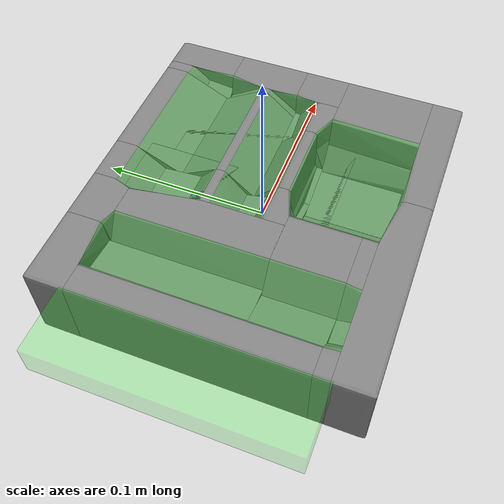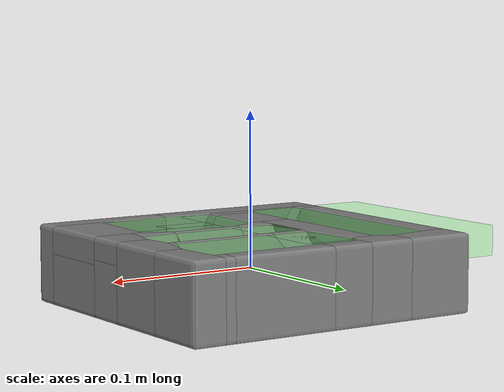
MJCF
<mujoco model="cosmetics_inlay_a">
  <default>
    <default class="visual">
      <geom group="1" type="mesh" contype="0" conaffinity="0" />
    </default>
    <default class="collision">
      <geom group="0" type="mesh" />
    </default>
  </default>
  <asset>
    <mesh file="cosmetics_inlay_a.obj" name="cosmetics_inlay_a" />
    <mesh file="cosmetics_inlay_a_collision_0.obj" name="cosmetics_inlay_a_collision_0" />
    <mesh file="cosmetics_inlay_a_collision_1.obj" name="cosmetics_inlay_a_collision_1" />
    <mesh file="cosmetics_inlay_a_collision_2.obj" name="cosmetics_inlay_a_collision_2" />
    <mesh file="cosmetics_inlay_a_collision_3.obj" name="cosmetics_inlay_a_collision_3" />
    <mesh file="cosmetics_inlay_a_collision_4.obj" name="cosmetics_inlay_a_collision_4" />
    <mesh file="cosmetics_inlay_a_collision_5.obj" name="cosmetics_inlay_a_collision_5" />
    <mesh file="cosmetics_inlay_a_collision_6.obj" name="cosmetics_inlay_a_collision_6" />
    <mesh file="cosmetics_inlay_a_collision_7.obj" name="cosmetics_inlay_a_collision_7" />
    <mesh file="cosmetics_inlay_a_collision_8.obj" name="cosmetics_inlay_a_collision_8" />
    <mesh file="cosmetics_inlay_a_collision_9.obj" name="cosmetics_inlay_a_collision_9" />
    <mesh file="cosmetics_inlay_a_collision_10.obj" name="cosmetics_inlay_a_collision_10" />
    <mesh file="cosmetics_inlay_a_collision_11.obj" name="cosmetics_inlay_a_collision_11" />
    <mesh file="cosmetics_inlay_a_collision_12.obj" name="cosmetics_inlay_a_collision_12" />
    <mesh file="cosmetics_inlay_a_collision_13.obj" name="cosmetics_inlay_a_collision_13" />
    <mesh file="cosmetics_inlay_a_collision_14.obj" name="cosmetics_inlay_a_collision_14" />
    <mesh file="cosmetics_inlay_a_collision_15.obj" name="cosmetics_inlay_a_collision_15" />
    <mesh file="cosmetics_inlay_a_collision_16.obj" name="cosmetics_inlay_a_collision_16" />
    <mesh file="cosmetics_inlay_a_collision_17.obj" name="cosmetics_inlay_a_collision_17" />
    <mesh file="cosmetics_inlay_a_collision_18.obj" name="cosmetics_inlay_a_collision_18" />
    <mesh file="cosmetics_inlay_a_collision_19.obj" name="cosmetics_inlay_a_collision_19" />
    <mesh file="cosmetics_inlay_a_collision_20.obj" name="cosmetics_inlay_a_collision_20" />
    <mesh file="cosmetics_inlay_a_collision_21.obj" name="cosmetics_inlay_a_collision_21" />
    <mesh file="cosmetics_inlay_a_collision_22.obj" name="cosmetics_inlay_a_collision_22" />
    <mesh file="cosmetics_inlay_a_collision_23.obj" name="cosmetics_inlay_a_collision_23" />
    <mesh file="cosmetics_inlay_a_collision_24.obj" name="cosmetics_inlay_a_collision_24" />
    <mesh file="cosmetics_inlay_a_collision_25.obj" name="cosmetics_inlay_a_collision_25" />
    <mesh file="cosmetics_inlay_a_collision_26.obj" name="cosmetics_inlay_a_collision_26" />
    <mesh file="cosmetics_inlay_a_collision_27.obj" name="cosmetics_inlay_a_collision_27" />
    <mesh file="cosmetics_inlay_a_collision_28.obj" name="cosmetics_inlay_a_collision_28" />
    <mesh file="cosmetics_inlay_a_collision_29.obj" name="cosmetics_inlay_a_collision_29" />
    <mesh file="cosmetics_inlay_a_collision_30.obj" name="cosmetics_inlay_a_collision_30" />
    <mesh file="cosmetics_inlay_a_collision_31.obj" name="cosmetics_inlay_a_collision_31" />
    <mesh file="cosmetics_inlay_a_collision_32.obj" name="cosmetics_inlay_a_collision_32" />
    <mesh file="cosmetics_inlay_a_collision_33.obj" name="cosmetics_inlay_a_collision_33" />
    <mesh file="cosmetics_inlay_a_collision_34.obj" name="cosmetics_inlay_a_collision_34" />
    <mesh file="cosmetics_inlay_a_collision_35.obj" name="cosmetics_inlay_a_collision_35" />
  </asset>
  <worldbody>
    <body>
      <body name="object" pos="0 0 0" quat="1 0 0 0">
        <body name="cosmetics_inlay_a" pos="0 0 0" quat="1 0 0 0">
          <inertial pos="0 0 0" mass="0.5" diaginertia="1e-3 1e-3 1e-3" />
          <geom type="mesh" mesh="cosmetics_inlay_a" group="1" quat="1 0 0 0" rgba="0.8 0.8 0.8 1" contype="0" conaffinity="0" />
          <geom type="mesh" mesh="cosmetics_inlay_a_collision_0" group="0" quat="1 0 0 0" />
          <geom type="mesh" mesh="cosmetics_inlay_a_collision_1" group="0" quat="1 0 0 0" />
          <geom type="mesh" mesh="cosmetics_inlay_a_collision_2" group="0" quat="1 0 0 0" />
          <geom type="mesh" mesh="cosmetics_inlay_a_collision_3" group="0" quat="1 0 0 0" />
          <geom type="mesh" mesh="cosmetics_inlay_a_collision_4" group="0" quat="1 0 0 0" />
          <geom type="mesh" mesh="cosmetics_inlay_a_collision_5" group="0" quat="1 0 0 0" />
          <geom type="mesh" mesh="cosmetics_inlay_a_collision_6" group="0" quat="1 0 0 0" />
          <geom type="mesh" mesh="cosmetics_inlay_a_collision_7" group="0" quat="1 0 0 0" />
          <geom type="mesh" mesh="cosmetics_inlay_a_collision_8" group="0" quat="1 0 0 0" />
          <geom type="mesh" mesh="cosmetics_inlay_a_collision_9" group="0" quat="1 0 0 0" />
          <geom type="mesh" mesh="cosmetics_inlay_a_collision_10" group="0" quat="1 0 0 0" />
          <geom type="mesh" mesh="cosmetics_inlay_a_collision_11" group="0" quat="1 0 0 0" />
          <geom type="mesh" mesh="cosmetics_inlay_a_collision_12" group="0" quat="1 0 0 0" />
          <geom type="mesh" mesh="cosmetics_inlay_a_collision_13" group="0" quat="1 0 0 0" />
          <geom type="mesh" mesh="cosmetics_inlay_a_collision_14" group="0" quat="1 0 0 0" />
          <geom type="mesh" mesh="cosmetics_inlay_a_collision_15" group="0" quat="1 0 0 0" />
          <geom type="mesh" mesh="cosmetics_inlay_a_collision_16" group="0" quat="1 0 0 0" />
          <geom type="mesh" mesh="cosmetics_inlay_a_collision_17" group="0" quat="1 0 0 0" />
          <geom type="mesh" mesh="cosmetics_inlay_a_collision_18" group="0" quat="1 0 0 0" />
          <geom type="mesh" mesh="cosmetics_inlay_a_collision_19" group="0" quat="1 0 0 0" />
          <geom type="mesh" mesh="cosmetics_inlay_a_collision_20" group="0" quat="1 0 0 0" />
          <geom type="mesh" mesh="cosmetics_inlay_a_collision_21" group="0" quat="1 0 0 0" />
          <geom type="mesh" mesh="cosmetics_inlay_a_collision_22" group="0" quat="1 0 0 0" />
          <geom type="mesh" mesh="cosmetics_inlay_a_collision_23" group="0" quat="1 0 0 0" />
          <geom type="mesh" mesh="cosmetics_inlay_a_collision_24" group="0" quat="1 0 0 0" />
          <geom type="mesh" mesh="cosmetics_inlay_a_collision_25" group="0" quat="1 0 0 0" />
          <geom type="mesh" mesh="cosmetics_inlay_a_collision_26" group="0" quat="1 0 0 0" />
          <geom type="mesh" mesh="cosmetics_inlay_a_collision_27" group="0" quat="1 0 0 0" />
          <geom type="mesh" mesh="cosmetics_inlay_a_collision_28" group="0" quat="1 0 0 0" />
          <geom type="mesh" mesh="cosmetics_inlay_a_collision_29" group="0" quat="1 0 0 0" />
          <geom type="mesh" mesh="cosmetics_inlay_a_collision_30" group="0" quat="1 0 0 0" />
          <geom type="mesh" mesh="cosmetics_inlay_a_collision_31" group="0" quat="1 0 0 0" />
          <geom type="mesh" mesh="cosmetics_inlay_a_collision_32" group="0" quat="1 0 0 0" />
          <geom type="mesh" mesh="cosmetics_inlay_a_collision_33" group="0" quat="1 0 0 0" />
          <geom type="mesh" mesh="cosmetics_inlay_a_collision_34" group="0" quat="1 0 0 0" />
          <geom type="mesh" mesh="cosmetics_inlay_a_collision_35" group="0" quat="1 0 0 0" />
          <site name="goal_point_cream_bottle" type="sphere" size="0.003" pos="0.026151 0.026151 0.010360" quat="1 0 0 0" rgba="1 0 0 0.8" group="0" />
          <site name="goal_area_cream_bottle" type="box" size="0.054600 0.054600 0.007320" pos="0.026151 0.026151 0.017680" quat="1 0 0 0" rgba="0 1 0 0.2" group="0" />
          <site name="goal_point_jar" type="sphere" size="0.003" pos="0.025076 -0.045993 -0.015080" quat="1 0 0 0" rgba="1 0 0 0.8" group="0" />
          <site name="goal_area_cream_jar" type="box" size="0.040080 0.040080 0.020040" pos="0.025076 -0.045993 0.004960" quat="1 0 0 0" rgba="0 1 0 0.2" group="0" />
          <site name="goal_point_pump_bottle" type="sphere" size="0.003" pos="-0.065 0 0.005380" quat="1 0 0 0" rgba="1 0 0 0.8" group="0" />
          <site name="goal_area_pump_bottle" type="box" size="0.073200 0.073200 0.009810" pos="-0.065 0 0.015190" quat="1 0 0 0" rgba="0 1 0 0.2" group="0" />
          <site name="goal_point_serum_bottle" type="sphere" size="0.003" pos="0.027063 0.007534 0.008620" quat="1 0 0 0" rgba="1 0 0 0.8" group="0" />
          <site name="goal_area_serum_bottle" type="box" size="0.050760 0.050760 0.008190" pos="0.027063 0.007534 0.016810" quat="1 0 0 0" rgba="0 1 0 0.2" group="0" />
        </body>
      </body>
      <site name="bottom_site" pos="0 0 -0.0245" size="0.01" rgba="0 0 0 0" quat="1 0 0 0" />
      <site name="top_site" pos="0 0 0.0245" size="0.01" rgba="0 0 0 0" quat="1 0 0 0" />
      <site name="horizontal_radius_site" pos="0.1 0.0935 0" size="0.01" rgba="0 0 0 0" quat="1 0 0 0" />
    </body>
  </worldbody>
</mujoco>
